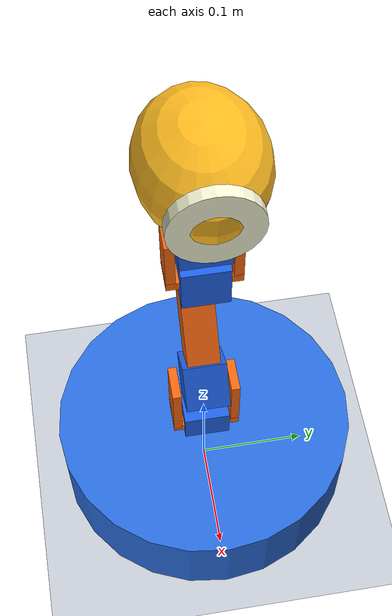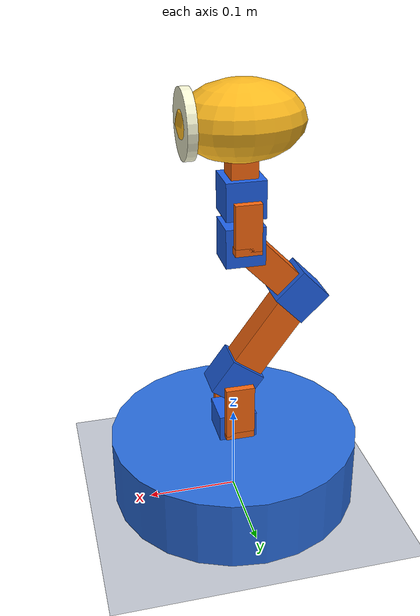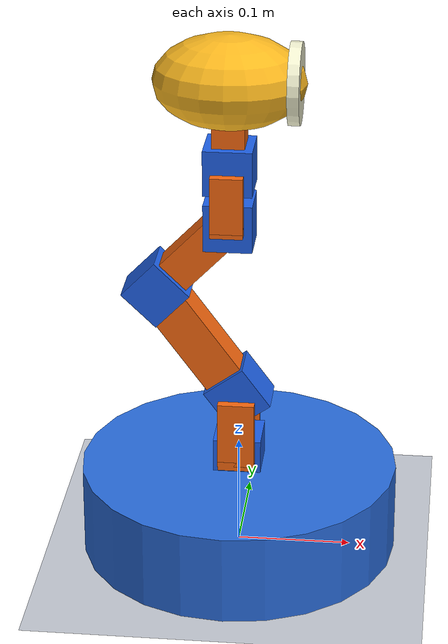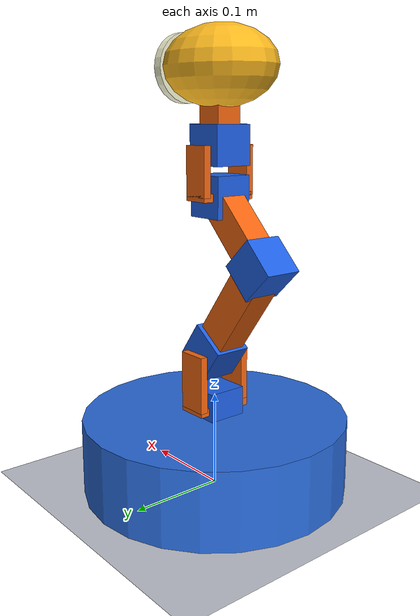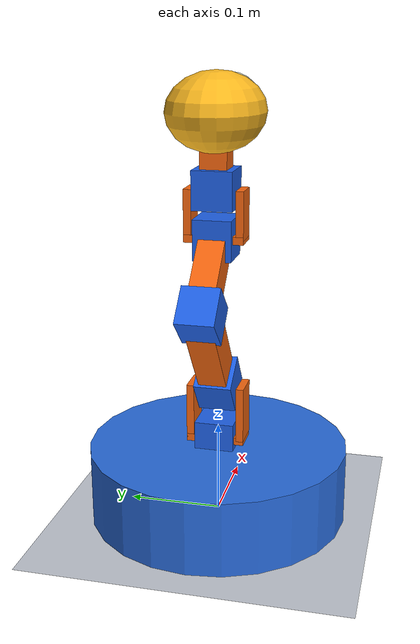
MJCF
<mujoco model="lamp_5axis">
  <compiler angle="radian"/>
  <option timestep="0.002" gravity="0 0 -9.81"/>
  <visual>
    <global offwidth="1280" offheight="720"/>
    <headlight ambient="0.55 0.55 0.55" diffuse="0.85 0.85 0.85"/>
  </visual>
  <default>
    <!-- Kinematic first model: geometry is visual until masses and contact are calibrated. -->
    <geom contype="0" conaffinity="0" friction="0.8 0.1 0.1"/>
  </default>

  <worldbody>
    <geom name="desk" type="plane" size="2 2 0.1" rgba="0.76 0.78 0.82 1"/>
    <light name="room_light" pos="-0.4 -0.7 1.5" diffuse="1 1 1"/>

    <body name="base" pos="0 0 0.04">
      <geom name="base_shell" type="cylinder" size="0.14 0.04" mass="1.2"
            rgba="0.16 0.42 0.86 1"/>

      <!-- J1: base yaw. -->
      <body name="j1_base" pos="0 0 0.05">
        <joint name="j1_base_yaw" type="hinge" axis="0 0 1"
               range="-1.57 1.57" damping="1.2" armature="0.015"/>
        <!-- 42 x 42 x 40 mm stepper motor; the shaft is vertical (Z). -->
        <geom name="j1_motor" type="box" size="0.021 0.021 0.020" mass="0.35"
              rgba="0.12 0.38 0.90 1"/>

        <!-- Red lower U-arm: joins the vertical J1 motor to the horizontal J2 motor. -->
        <geom name="base_u_left" type="box" pos="0 -0.027 0.030" size="0.016 0.004 0.030"
              mass="0.03" rgba="0.96 0.40 0.06 1"/>
        <geom name="base_u_right" type="box" pos="0 0.027 0.030" size="0.016 0.004 0.030"
              mass="0.03" rgba="0.96 0.40 0.06 1"/>
        <geom name="base_u_bridge" type="box" pos="0 0 0" size="0.016 0.031 0.004"
              mass="0.03" rgba="0.96 0.40 0.06 1"/>
        <!--
          Static mount offsets calibrate qpos=0 to the photographed upright S pose.
          They are physical installation angles, not changes to the shared pose library.
        -->
        <!-- J2: shoulder pitch sits inside the top of the photo-estimated 60 mm fork. -->
        <body name="j2_shoulder" pos="0 0 0.06" euler="0 -2.20 0">
          <joint name="j2_shoulder" type="hinge" axis="0 1 0"
                 range="-0.78 0.78" damping="1.0" armature="0.012"/>
          <!-- 42 x 42 x 40 mm stepper motor; the shaft is along Y. -->
          <geom name="j2_motor" type="box" size="0.021 0.020 0.021"
                mass="0.18" rgba="0.12 0.38 0.90 1"/>
          <!-- Red 120 mm main arm: a plate-like member between J2 and J3. -->
          <geom name="large_arm_120mm" type="box" pos="0.06 0 0"
                size="0.06 0.015 0.018" mass="0.22" rgba="0.96 0.40 0.06 1"/>

          <!-- J3: elbow pitch, located at the end of the 120 mm large arm. -->
          <body name="j3_elbow" pos="0.12 0 0" euler="0 1.40 0">
            <joint name="j3_elbow" type="hinge" axis="0 1 0"
                   range="-0.95 0.95" damping="0.9" armature="0.010"/>
            <!-- 42 x 42 x 40 mm stepper motor; the shaft is along Y. -->
            <geom name="j3_motor" type="box" size="0.021 0.020 0.021"
                  mass="0.15" rgba="0.12 0.38 0.90 1"/>
            <!-- Red 90 mm forearm: a plate-like member between J3 and J4. -->
            <geom name="small_arm_90mm" type="box" pos="0.045 0 0"
                  size="0.045 0.014 0.016" mass="0.16" rgba="0.96 0.40 0.06 1"/>

            <!-- J4: neck pitch, located at the end of the 90 mm small arm. -->
            <body name="j4_neck" pos="0.09 0 0" euler="0 0.80 0">
              <joint name="j4_neck_pitch" type="hinge" axis="0 1 0"
                     range="-0.70 0.70" damping="0.7" armature="0.008"/>
              <!-- 42 x 42 x 40 mm stepper motor; the shaft is along Y. -->
              <geom name="j4_motor" type="box" size="0.021 0.020 0.021"
                    mass="0.12" rgba="0.12 0.38 0.90 1"/>

              <!-- Red upper U-arm: joins horizontal J4 to vertical J5. -->
              <geom name="neck_u_left" type="box" pos="0 -0.027 0.025" size="0.014 0.004 0.025"
                    mass="0.03" rgba="0.96 0.40 0.06 1"/>
              <geom name="neck_u_right" type="box" pos="0 0.027 0.025" size="0.014 0.004 0.025"
                    mass="0.03" rgba="0.96 0.40 0.06 1"/>
              <geom name="neck_u_bridge" type="box" pos="0 0 0" size="0.014 0.031 0.004"
                    mass="0.03" rgba="0.96 0.40 0.06 1"/>

              <!-- J5 sits in the terminal fork opening and rotates the head horizontally. -->
              <body name="j5_head" pos="0 0 0.05">
                <joint name="j5_head_yaw" type="hinge" axis="0 0 1"
                       range="-1.05 1.05" damping="0.6" armature="0.006"/>
                <!-- 42 x 42 x 40 mm stepper motor; the shaft is vertical (Z). -->
                <geom name="j5_motor" type="box" size="0.021 0.021 0.020" mass="0.10"
                      rgba="0.12 0.38 0.90 1"/>
                <!-- The vertical J5 shaft carries the lamp head above the motor, not beside it. -->
                <geom name="head_riser" type="box" pos="0 0 0.037" size="0.014 0.014 0.037"
                      mass="0.04" rgba="0.96 0.40 0.06 1"/>
                <geom name="head_adapter_plate" type="box" pos="0 0 0.075"
                      size="0.030 0.024 0.005" mass="0.04" rgba="0.96 0.40 0.06 1"/>
                <body name="lamp_head" pos="0 0 0.075">
                  <!-- 130 x 100 x 80 mm head: about 2.4 times the 42 mm motor face. -->
                  <geom name="head_shell" type="ellipsoid" size="0.065 0.050 0.040" mass="0.25"
                        rgba="0.98 0.72 0.12 1"/>
                  <geom name="light_diffuser" type="cylinder" pos="0.055 0 0" size="0.035 0.005"
                        euler="0 1.5708 0" mass="0.02" rgba="0.95 0.95 0.82 1"/>
                  <camera name="lamp_camera" pos="0.076 0 0" xyaxes="0 -1 0 0 0 1"/>
                </body>
              </body>
            </body>
          </body>
        </body>
      </body>
    </body>
  </worldbody>

  <actuator>
    <!-- ctrlrange makes the native Simulate UI expose bounded drag sliders. -->
    <position name="j1_position" joint="j1_base_yaw" kp="4" forcelimited="true" forcerange="-0.96 0.96" ctrllimited="true" ctrlrange="-1.57 1.57"/>
    <position name="j2_position" joint="j2_shoulder" kp="3" forcelimited="true" forcerange="-0.72 0.72" ctrllimited="true" ctrlrange="-0.78 0.78"/>
    <position name="j3_position" joint="j3_elbow" kp="3" forcelimited="true" forcerange="-0.72 0.72" ctrllimited="true" ctrlrange="-0.95 0.95"/>
    <position name="j4_position" joint="j4_neck_pitch" kp="2" forcelimited="true" forcerange="-0.60 0.60" ctrllimited="true" ctrlrange="-0.70 0.70"/>
    <position name="j5_position" joint="j5_head_yaw" kp="2" forcelimited="true" forcerange="-0.60 0.60" ctrllimited="true" ctrlrange="-1.05 1.05"/>
  </actuator>

  <keyframe>
    <key name="idle" qpos="0 0 0 0 0"/>
    <key name="look_left" qpos="-0.55 -0.08 0.12 0.10 0.30"/>
    <key name="look_right" qpos="0.55 -0.08 0.12 0.10 -0.30"/>
    <key name="reading" qpos="0.25 -0.20 0.30 0.12 -0.18"/>
  </keyframe>
</mujoco>
